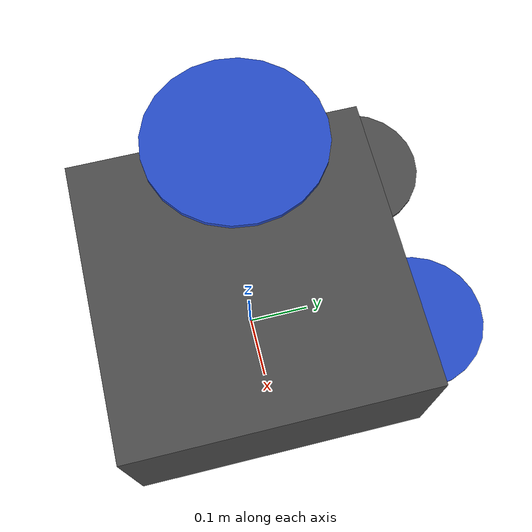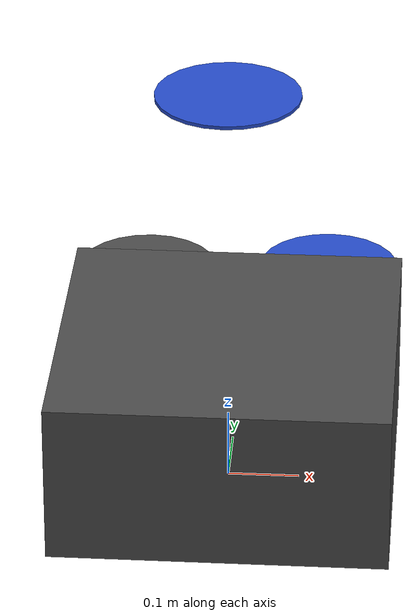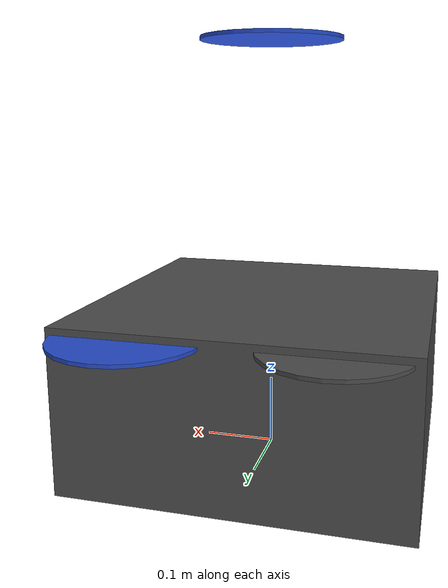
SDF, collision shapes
<?xml version='1.0'?>
<sdf version='1.6'>
  <model name='sikorsky X2'>
    <pose>0 0 0.194923 0 0 0</pose>
    <link name='base_link'>
      <velocity_decay>
        <linear>0.0</linear>
        <angular>0.0</angular>
      </velocity_decay>
      <inertial>
        <pose>0 0 0 0 0 0</pose>
        <mass>1.5</mass>
        <inertia>
          <ixx>0.008</ixx>
          <ixy>0</ixy>
          <ixz>0</ixz>
          <iyy>0.015</iyy>
          <iyz>0</iyz>
          <izz>0.017</izz>
        </inertia>
      </inertial>
      <collision name='base_link_collision'>
        <pose>0 0 -0.08 0 0 0</pose>
        <geometry>
          <box>
            <size>0.47 0.47 0.23</size>
          </box>
        </geometry>
        <surface>
          <contact>
            <ode>
              <max_vel>100.0</max_vel>
              <min_depth>0.001</min_depth>
            </ode>
          </contact>
          <friction>
            <ode>
              <mu>1.0</mu>
              <mu2>1.0</mu2>
            </ode>
          </friction>
        </surface>
      </collision>
      <visual name='base_link_visual'>
        <geometry>
          <mesh>
            <uri>model://iris_with_standoffs/meshes/iris.dae</uri>
          </mesh>
        </geometry>
        <material>
          <script>
            <name>Gazebo/DarkGrey</name>
          </script>
        </material>
      </visual>

      <visual name='front_left_leg_visual'>
        <pose>0.123 0.22 -0.11 0 0 0</pose>
        <geometry>
          <cylinder>
            <radius>0.005</radius>
            <length>0.17</length>
          </cylinder>
        </geometry>
        <material>
          <script>
            <name>Gazebo/FlatBlack</name>
            <uri>file://media/materials/scripts/gazebo.material</uri>
          </script>
        </material>
      </visual>
      <visual name='front_right_leg_visual'>
        <pose>0.123 -0.22 -0.11 0 0 0</pose>
        <geometry>
          <cylinder>
            <radius>0.005</radius>
            <length>0.17</length>
          </cylinder>
        </geometry>
        <material>
          <script>
            <name>Gazebo/FlatBlack</name>
            <uri>file://media/materials/scripts/gazebo.material</uri>
          </script>
        </material>
      </visual>
      <visual name='rear_left_leg_visual'>
        <pose>-0.140 0.21 -0.11 0 0 0</pose>
        <geometry>
          <cylinder>
            <radius>0.005</radius>
            <length>0.17</length>
          </cylinder>
        </geometry>
        <material>
          <script>
            <name>Gazebo/FlatBlack</name>
            <uri>file://media/materials/scripts/gazebo.material</uri>
          </script>
        </material>
      </visual>
      <visual name='rear_right_leg_visual'>
        <pose>-0.140 -0.21 -0.11 0 0 0</pose>
        <geometry>
          <cylinder>
            <radius>0.005</radius>
            <length>0.17</length>
          </cylinder>
        </geometry>
        <material>
          <script>
            <name>Gazebo/FlatBlack</name>
            <uri>file://media/materials/scripts/gazebo.material</uri>
          </script>
        </material>
      </visual>
    </link>
    <link name='iris/imu_link'>
      <inertial>
        <pose>0 0 0 0 0 0</pose>
        <mass>0.15</mass>
        <inertia>
          <ixx>0.00001</ixx>
          <ixy>0</ixy>
          <ixz>0</ixz>
          <iyy>0.00002</iyy>
          <iyz>0</iyz>
          <izz>0.00002</izz>
        </inertia>
      </inertial>
      <sensor name="imu_sensor" type="imu">
        <pose>0 0 0 3.141593 0 0</pose>
        <always_on>1</always_on>
        <update_rate>1000.0</update_rate>
      </sensor>
    </link>
    <joint name='iris/imu_joint' type='revolute'>
      <child>iris/imu_link</child>
      <parent>base_link</parent>
      <axis>
        <xyz>0 0 1</xyz>
        <limit>
          <lower>0</lower>
          <upper>0</upper>
          <effort>0</effort>
          <velocity>0</velocity>
        </limit>
        <dynamics>
          <damping>1.0</damping>
        </dynamics>
        <use_parent_model_frame>1</use_parent_model_frame>
      </axis>
      <physics>
        <ode>
          <implicit_spring_damper>1</implicit_spring_damper>
        </ode>
      </physics>
    </joint>
    <link name='rotor_up'>
      <pose>0 0 0.4 0 -0 0</pose>
      <inertial>
        <pose>0 0 0 0 -0 0</pose>
        <mass>0.025</mass>
        <inertia>
          <ixx>9.75e-06</ixx>
          <ixy>0</ixy>
          <ixz>0</ixz>
          <iyy>0.000166704</iyy>
          <iyz>0</iyz>
          <izz>0.000167604</izz>
        </inertia>
      </inertial>
      <collision name='rotor_up_collision'>
        <pose>0 0 0 0 -0 0</pose>
        <geometry>
          <cylinder>
            <length>0.005</length>
            <radius>0.1</radius>
          </cylinder>
        </geometry>
        <surface>
          <contact>
            <ode/>
          </contact>
          <friction>
            <ode/>
          </friction>
        </surface>
      </collision>
      <visual name='rotor_up_visual'>
        <pose>0 0 0 0 -0 0</pose>
        <geometry>
          <mesh>
            <scale>1 1 1</scale>
            <uri>model://iris_with_standoffs/meshes/iris_prop_ccw.dae</uri>
          </mesh>
        </geometry>
        <material>
          <script>
            <name>Gazebo/Blue</name>
            <uri>__default__</uri>
          </script>
        </material>
      </visual>
      <gravity>1</gravity>
      <velocity_decay/>
      <self_collide>0</self_collide>
    </link>
    <joint name='rotor_up_joint' type='revolute'>
      <child>rotor_0</child>
      <parent>base_link</parent>
      <axis>
        <xyz>0 0 1</xyz>
        <limit>
          <lower>-1e+16</lower>
          <upper>1e+16</upper>
        </limit>
        <dynamics>
          <damping>0.004</damping>
        </dynamics>
        <use_parent_model_frame>1</use_parent_model_frame>
      </axis>
      <physics>
        <ode>
          <implicit_spring_damper>1</implicit_spring_damper>
        </ode>
      </physics>
    </joint>
    <link name='rotor_down'>
      <pose>-0.13 0.2 0.023 0 -0 0</pose>
      <inertial>
        <pose>0 0 0 0 -0 0</pose>
        <mass>0.025</mass>
        <inertia>
          <ixx>9.75e-06</ixx>
          <ixy>0</ixy>
          <ixz>0</ixz>
          <iyy>0.000166704</iyy>
          <iyz>0</iyz>
          <izz>0.000167604</izz>
        </inertia>
      </inertial>
      <collision name='rotor_down_collision'>
        <pose>0 0 0 0 -0 0</pose>
        <geometry>
          <cylinder>
            <length>0.005</length>
            <radius>0.1</radius>
          </cylinder>
        </geometry>
        <surface>
          <contact>
            <ode/>
          </contact>
          <friction>
            <ode/>
          </friction>
        </surface>
      </collision>
      <visual name='rotor_down_visual'>
        <pose>0 0 0 0 -0 0</pose>
        <geometry>
          <mesh>
            <scale>1 1 1</scale>
            <uri>model://iris_with_standoffs/meshes/iris_prop_ccw.dae</uri>
          </mesh>
        </geometry>
        <material>
          <script>
            <name>Gazebo/DarkGrey</name>
            <uri>__default__</uri>
          </script>
        </material>
      </visual>
      <gravity>1</gravity>
      <velocity_decay/>
      <self_collide>0</self_collide>
    </link>
    <joint name='rotor_down_joint' type='revolute'>
      <child>rotor_1</child>
      <parent>base_link</parent>
      <axis>
        <xyz>0 0 1</xyz>
        <limit>
          <lower>-1e+16</lower>
          <upper>1e+16</upper>
        </limit>
        <dynamics>
          <damping>0.004</damping>
        </dynamics>
        <use_parent_model_frame>1</use_parent_model_frame>
      </axis>
      <physics>
        <ode>
          <implicit_spring_damper>1</implicit_spring_damper>
        </ode>
      </physics>
    </joint>
    <link name='rotor_rear'>
      <pose>0.13 0.22 0.023 0 -0 0</pose>
      <inertial>
        <pose>0 0 0 0 -0 0</pose>
        <mass>0.025</mass>
        <inertia>
          <ixx>9.75e-06</ixx>
          <ixy>0</ixy>
          <ixz>0</ixz>
          <iyy>0.000166704</iyy>
          <iyz>0</iyz>
          <izz>0.000167604</izz>
        </inertia>
      </inertial>
      <collision name='rotor_rear_collision'>
        <pose>0 0 0 0 -0 0</pose>
        <geometry>
          <cylinder>
            <length>0.005</length>
            <radius>0.1</radius>
          </cylinder>
        </geometry>
        <surface>
          <contact>
            <ode/>
          </contact>
          <friction>
            <ode/>
          </friction>
        </surface>
      </collision>
      <visual name='rotor_rear_visual'>
        <pose>0 0 0 0 -0 0</pose>
        <geometry>
          <mesh>
            <scale>1 1 1</scale>
            <uri>model://iris_with_standoffs/meshes/iris_prop_cw.dae</uri>
          </mesh>
        </geometry>
        <material>
          <script>
            <name>Gazebo/Blue</name>
            <uri>__default__</uri>
          </script>
        </material>
      </visual>
      <gravity>1</gravity>
      <velocity_decay/>
      <self_collide>0</self_collide>
    </link>
    <joint name='rotor_rear_joint' type='revolute'>
      <child>rotor_2</child>
      <parent>base_link</parent>
      <axis>
        <xyz>0 0 1</xyz>
        <limit>
          <lower>-1e+16</lower>
          <upper>1e+16</upper>
        </limit>
        <dynamics>
          <damping>0.004</damping>
        </dynamics>
        <use_parent_model_frame>1</use_parent_model_frame>
      </axis>
      <physics>
        <ode>
          <implicit_spring_damper>1</implicit_spring_damper>
        </ode>
      </physics>
    </joint>
    <static>0</static>
  </model>
</sdf>
